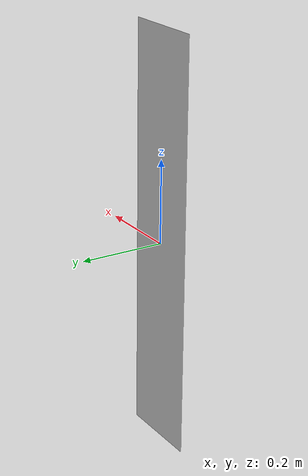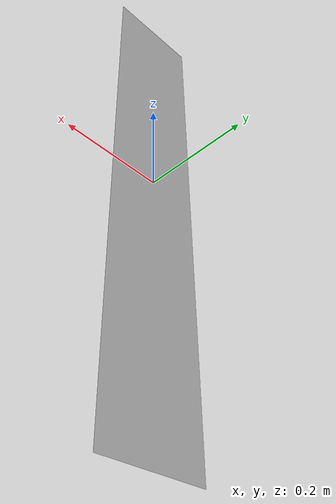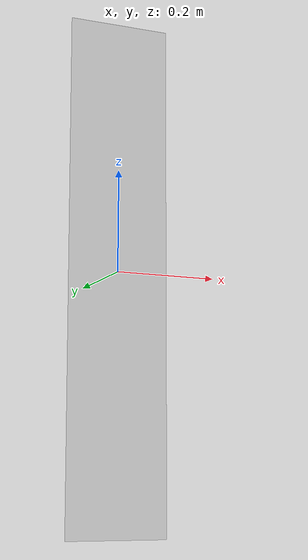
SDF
<?xml version='1.0'?>
<sdf version='1.6'>
  <model name='room5_wall2'>
    <static>true</static>
    <link name='link'>
      <collision name='collision'>
        <geometry><box><size>0.2 0.0 1.0</size></box></geometry>
      </collision>
      <visual name='visual'>
        <geometry><box><size>0.2 0.0 1.0</size></box></geometry>
      </visual>
    </link>
  </model>
</sdf>
